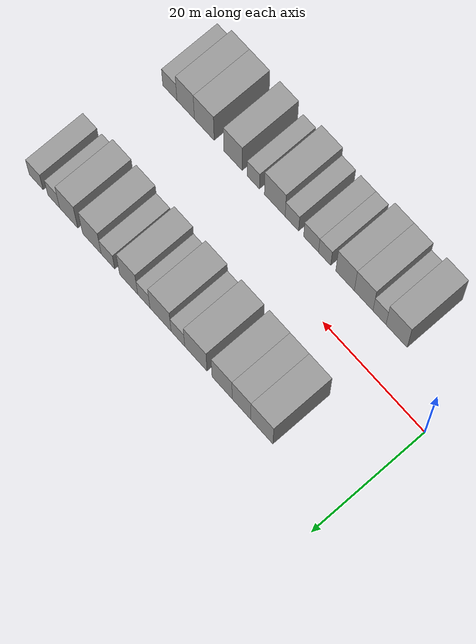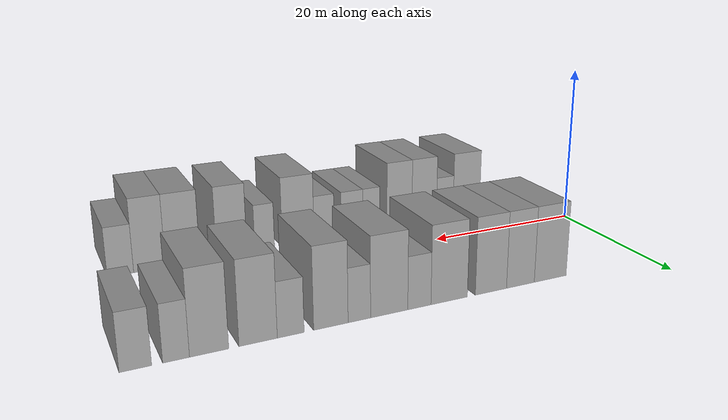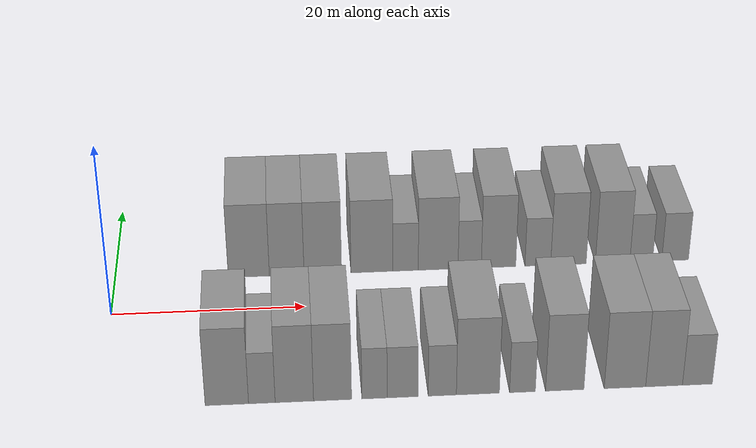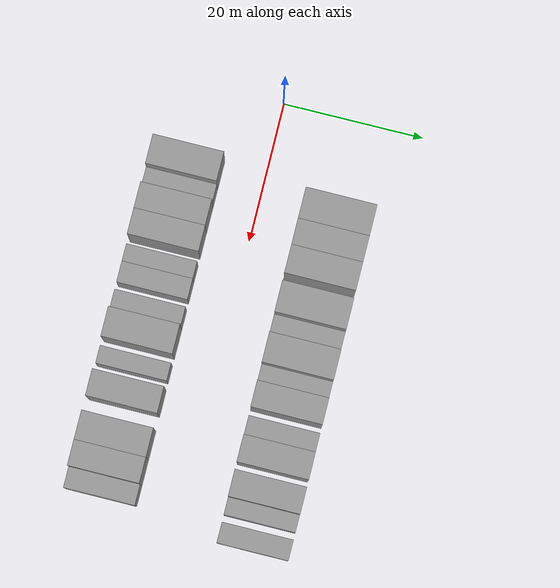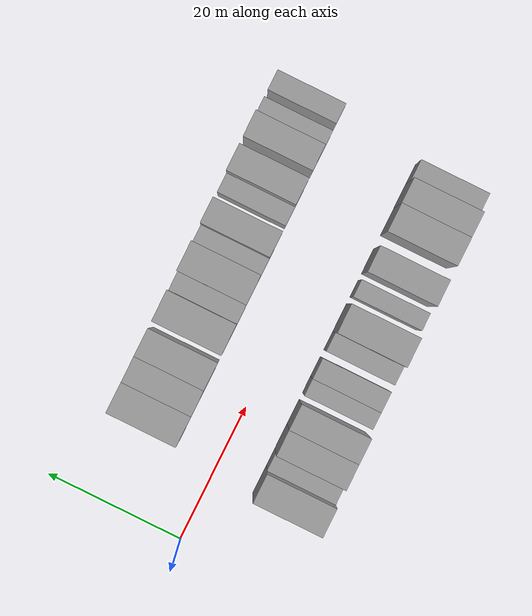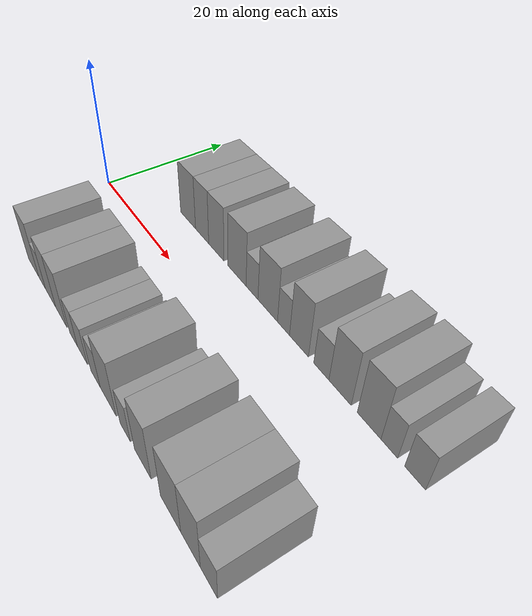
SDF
<sdf version="1.6">
 <world name="default">
  <model name="building_1">
   <static>1</static>
   <pose>14.1911 11.0000 0 0.000000 0.000000 1.570796</pose>
   <link name="link">
    <pose>0 0 4.50 0 0 0</pose>
    <collision name="collision"><geometry><box><size>10.0000 4.3821 9.0000</size></box></geometry></collision>
    <visual name="visual">
     <cast_shadows>0</cast_shadows>
     <geometry><box><size>10.0000 4.3821 9.0000</size></box></geometry>
     <material>
      <script>
       <uri>model://grey_wall/materials/scripts</uri>
       <uri>model://grey_wall/materials/textures</uri>
       <name>vrc/grey_wall</name>
      </script>
     </material>
    </visual>
   </link>
  </model>
  <model name="building_2">
   <static>1</static>
   <pose>18.2319 11.0000 0 0.000000 0.000000 1.570796</pose>
   <link name="link">
    <pose>0 0 4.50 0 0 0</pose>
    <collision name="collision"><geometry><box><size>10.0000 3.6997 9.0000</size></box></geometry></collision>
    <visual name="visual">
     <cast_shadows>0</cast_shadows>
     <geometry><box><size>10.0000 3.6997 9.0000</size></box></geometry>
     <material>
      <script>
       <uri>model://grey_wall/materials/scripts</uri>
       <uri>model://grey_wall/materials/textures</uri>
       <name>vrc/grey_wall</name>
      </script>
     </material>
    </visual>
   </link>
  </model>
  <model name="building_3">
   <static>1</static>
   <pose>22.0924 11.0000 0 0.000000 0.000000 1.570796</pose>
   <link name="link">
    <pose>0 0 4.50 0 0 0</pose>
    <collision name="collision"><geometry><box><size>10.0000 4.0213 9.0000</size></box></geometry></collision>
    <visual name="visual">
     <cast_shadows>0</cast_shadows>
     <geometry><box><size>10.0000 4.0213 9.0000</size></box></geometry>
     <material>
      <script>
       <uri>model://grey_wall/materials/scripts</uri>
       <uri>model://grey_wall/materials/textures</uri>
       <name>vrc/grey_wall</name>
      </script>
     </material>
    </visual>
   </link>
  </model>
  <model name="building_4">
   <static>1</static>
   <pose>27.3407 11.0000 0 0.000000 0.000000 1.570796</pose>
   <link name="link">
    <pose>0 0 4.50 0 0 0</pose>
    <collision name="collision"><geometry><box><size>10.0000 4.4752 9.0000</size></box></geometry></collision>
    <visual name="visual">
     <cast_shadows>0</cast_shadows>
     <geometry><box><size>10.0000 4.4752 9.0000</size></box></geometry>
     <material>
      <script>
       <uri>model://grey_wall/materials/scripts</uri>
       <uri>model://grey_wall/materials/textures</uri>
       <name>vrc/grey_wall</name>
      </script>
     </material>
    </visual>
   </link>
  </model>
  <model name="building_5">
   <static>1</static>
   <pose>30.9566 11.0000 0 0.000000 0.000000 1.570796</pose>
   <link name="link">
    <pose>0 0 3.00 0 0 0</pose>
    <collision name="collision"><geometry><box><size>10.0000 2.7566 6.0000</size></box></geometry></collision>
    <visual name="visual">
     <cast_shadows>0</cast_shadows>
     <geometry><box><size>10.0000 2.7566 6.0000</size></box></geometry>
     <material>
      <script>
       <uri>model://grey_wall/materials/scripts</uri>
       <uri>model://grey_wall/materials/textures</uri>
       <name>vrc/grey_wall</name>
      </script>
     </material>
    </visual>
   </link>
  </model>
  <model name="building_6">
   <static>1</static>
   <pose>34.4782 11.0000 0 0.000000 0.000000 1.570796</pose>
   <link name="link">
    <pose>0 0 4.50 0 0 0</pose>
    <collision name="collision"><geometry><box><size>10.0000 4.2865 9.0000</size></box></geometry></collision>
    <visual name="visual">
     <cast_shadows>0</cast_shadows>
     <geometry><box><size>10.0000 4.2865 9.0000</size></box></geometry>
     <material>
      <script>
       <uri>model://grey_wall/materials/scripts</uri>
       <uri>model://grey_wall/materials/textures</uri>
       <name>vrc/grey_wall</name>
      </script>
     </material>
    </visual>
   </link>
  </model>
  <model name="building_7">
   <static>1</static>
   <pose>37.8743 11.0000 0 0.000000 0.000000 1.570796</pose>
   <link name="link">
    <pose>0 0 3.00 0 0 0</pose>
    <collision name="collision"><geometry><box><size>10.0000 2.5058 6.0000</size></box></geometry></collision>
    <visual name="visual">
     <cast_shadows>0</cast_shadows>
     <geometry><box><size>10.0000 2.5058 6.0000</size></box></geometry>
     <material>
      <script>
       <uri>model://grey_wall/materials/scripts</uri>
       <uri>model://grey_wall/materials/textures</uri>
       <name>vrc/grey_wall</name>
      </script>
     </material>
    </visual>
   </link>
  </model>
  <model name="building_8">
   <static>1</static>
   <pose>40.9944 11.0000 0 0.000000 0.000000 1.570796</pose>
   <link name="link">
    <pose>0 0 4.50 0 0 0</pose>
    <collision name="collision"><geometry><box><size>10.0000 3.7344 9.0000</size></box></geometry></collision>
    <visual name="visual">
     <cast_shadows>0</cast_shadows>
     <geometry><box><size>10.0000 3.7344 9.0000</size></box></geometry>
     <material>
      <script>
       <uri>model://grey_wall/materials/scripts</uri>
       <uri>model://grey_wall/materials/textures</uri>
       <name>vrc/grey_wall</name>
      </script>
     </material>
    </visual>
   </link>
  </model>
  <model name="building_9">
   <static>1</static>
   <pose>45.2568 11.0000 0 0.000000 0.000000 1.570796</pose>
   <link name="link">
    <pose>0 0 3.00 0 0 0</pose>
    <collision name="collision"><geometry><box><size>10.0000 2.7903 6.0000</size></box></geometry></collision>
    <visual name="visual">
     <cast_shadows>0</cast_shadows>
     <geometry><box><size>10.0000 2.7903 6.0000</size></box></geometry>
     <material>
      <script>
       <uri>model://grey_wall/materials/scripts</uri>
       <uri>model://grey_wall/materials/textures</uri>
       <name>vrc/grey_wall</name>
      </script>
     </material>
    </visual>
   </link>
  </model>
  <model name="building_10">
   <static>1</static>
   <pose>48.5802 11.0000 0 0.000000 0.000000 1.570796</pose>
   <link name="link">
    <pose>0 0 4.50 0 0 0</pose>
    <collision name="collision"><geometry><box><size>10.0000 3.8563 9.0000</size></box></geometry></collision>
    <visual name="visual">
     <cast_shadows>0</cast_shadows>
     <geometry><box><size>10.0000 3.8563 9.0000</size></box></geometry>
     <material>
      <script>
       <uri>model://grey_wall/materials/scripts</uri>
       <uri>model://grey_wall/materials/textures</uri>
       <name>vrc/grey_wall</name>
      </script>
     </material>
    </visual>
   </link>
  </model>
  <model name="building_11">
   <static>1</static>
   <pose>53.3890 11.0000 0 0.000000 0.000000 1.570796</pose>
   <link name="link">
    <pose>0 0 4.50 0 0 0</pose>
    <collision name="collision"><geometry><box><size>10.0000 3.7614 9.0000</size></box></geometry></collision>
    <visual name="visual">
     <cast_shadows>0</cast_shadows>
     <geometry><box><size>10.0000 3.7614 9.0000</size></box></geometry>
     <material>
      <script>
       <uri>model://grey_wall/materials/scripts</uri>
       <uri>model://grey_wall/materials/textures</uri>
       <name>vrc/grey_wall</name>
      </script>
     </material>
    </visual>
   </link>
  </model>
  <model name="building_12">
   <static>1</static>
   <pose>56.5151 11.0000 0 0.000000 0.000000 1.570796</pose>
   <link name="link">
    <pose>0 0 3.00 0 0 0</pose>
    <collision name="collision"><geometry><box><size>10.0000 2.4908 6.0000</size></box></geometry></collision>
    <visual name="visual">
     <cast_shadows>0</cast_shadows>
     <geometry><box><size>10.0000 2.4908 6.0000</size></box></geometry>
     <material>
      <script>
       <uri>model://grey_wall/materials/scripts</uri>
       <uri>model://grey_wall/materials/textures</uri>
       <name>vrc/grey_wall</name>
      </script>
     </material>
    </visual>
   </link>
  </model>
  <model name="building_13">
   <static>1</static>
   <pose>60.2191 11.0000 0 0.000000 0.000000 1.570796</pose>
   <link name="link">
    <pose>0 0 3.00 0 0 0</pose>
    <collision name="collision"><geometry><box><size>10.0000 2.9172 6.0000</size></box></geometry></collision>
    <visual name="visual">
     <cast_shadows>0</cast_shadows>
     <geometry><box><size>10.0000 2.9172 6.0000</size></box></geometry>
     <material>
      <script>
       <uri>model://grey_wall/materials/scripts</uri>
       <uri>model://grey_wall/materials/textures</uri>
       <name>vrc/grey_wall</name>
      </script>
     </material>
    </visual>
   </link>
  </model>
  <model name="building_53">
   <static>1</static>
   <pose>12.0862 -11.0000 0 0.000000 0.000000 1.570796</pose>
   <link name="link">
    <pose>0 0 4.50 0 0 0</pose>
    <collision name="collision"><geometry><box><size>10.0000 4.1724 9.0000</size></box></geometry></collision>
    <visual name="visual">
     <cast_shadows>0</cast_shadows>
     <geometry><box><size>10.0000 4.1724 9.0000</size></box></geometry>
     <material>
      <script>
       <uri>model://grey_wall/materials/scripts</uri>
       <uri>model://grey_wall/materials/textures</uri>
       <name>vrc/grey_wall</name>
      </script>
     </material>
    </visual>
   </link>
  </model>
  <model name="building_54">
   <static>1</static>
   <pose>15.4557 -11.0000 0 0.000000 0.000000 1.570796</pose>
   <link name="link">
    <pose>0 0 3.00 0 0 0</pose>
    <collision name="collision"><geometry><box><size>10.0000 2.5665 6.0000</size></box></geometry></collision>
    <visual name="visual">
     <cast_shadows>0</cast_shadows>
     <geometry><box><size>10.0000 2.5665 6.0000</size></box></geometry>
     <material>
      <script>
       <uri>model://grey_wall/materials/scripts</uri>
       <uri>model://grey_wall/materials/textures</uri>
       <name>vrc/grey_wall</name>
      </script>
     </material>
    </visual>
   </link>
  </model>
  <model name="building_55">
   <static>1</static>
   <pose>18.5907 -11.0000 0 0.000000 0.000000 1.570796</pose>
   <link name="link">
    <pose>0 0 4.50 0 0 0</pose>
    <collision name="collision"><geometry><box><size>10.0000 3.7034 9.0000</size></box></geometry></collision>
    <visual name="visual">
     <cast_shadows>0</cast_shadows>
     <geometry><box><size>10.0000 3.7034 9.0000</size></box></geometry>
     <material>
      <script>
       <uri>model://grey_wall/materials/scripts</uri>
       <uri>model://grey_wall/materials/textures</uri>
       <name>vrc/grey_wall</name>
      </script>
     </material>
    </visual>
   </link>
  </model>
  <model name="building_56">
   <static>1</static>
   <pose>22.2863 -11.0000 0 0.000000 0.000000 1.570796</pose>
   <link name="link">
    <pose>0 0 4.50 0 0 0</pose>
    <collision name="collision"><geometry><box><size>10.0000 3.6878 9.0000</size></box></geometry></collision>
    <visual name="visual">
     <cast_shadows>0</cast_shadows>
     <geometry><box><size>10.0000 3.6878 9.0000</size></box></geometry>
     <material>
      <script>
       <uri>model://grey_wall/materials/scripts</uri>
       <uri>model://grey_wall/materials/textures</uri>
       <name>vrc/grey_wall</name>
      </script>
     </material>
    </visual>
   </link>
  </model>
  <model name="building_57">
   <static>1</static>
   <pose>26.3542 -11.0000 0 0.000000 0.000000 1.570796</pose>
   <link name="link">
    <pose>0 0 3.00 0 0 0</pose>
    <collision name="collision"><geometry><box><size>10.0000 2.4482 6.0000</size></box></geometry></collision>
    <visual name="visual">
     <cast_shadows>0</cast_shadows>
     <geometry><box><size>10.0000 2.4482 6.0000</size></box></geometry>
     <material>
      <script>
       <uri>model://grey_wall/materials/scripts</uri>
       <uri>model://grey_wall/materials/textures</uri>
       <name>vrc/grey_wall</name>
      </script>
     </material>
    </visual>
   </link>
  </model>
  <model name="building_58">
   <static>1</static>
   <pose>29.0768 -11.0000 0 0.000000 0.000000 1.570796</pose>
   <link name="link">
    <pose>0 0 3.00 0 0 0</pose>
    <collision name="collision"><geometry><box><size>10.0000 2.9970 6.0000</size></box></geometry></collision>
    <visual name="visual">
     <cast_shadows>0</cast_shadows>
     <geometry><box><size>10.0000 2.9970 6.0000</size></box></geometry>
     <material>
      <script>
       <uri>model://grey_wall/materials/scripts</uri>
       <uri>model://grey_wall/materials/textures</uri>
       <name>vrc/grey_wall</name>
      </script>
     </material>
    </visual>
   </link>
  </model>
  <model name="building_59">
   <static>1</static>
   <pose>32.9451 -11.0000 0 0.000000 0.000000 1.570796</pose>
   <link name="link">
    <pose>0 0 3.00 0 0 0</pose>
    <collision name="collision"><geometry><box><size>10.0000 2.7396 6.0000</size></box></geometry></collision>
    <visual name="visual">
     <cast_shadows>0</cast_shadows>
     <geometry><box><size>10.0000 2.7396 6.0000</size></box></geometry>
     <material>
      <script>
       <uri>model://grey_wall/materials/scripts</uri>
       <uri>model://grey_wall/materials/textures</uri>
       <name>vrc/grey_wall</name>
      </script>
     </material>
    </visual>
   </link>
  </model>
  <model name="building_60">
   <static>1</static>
   <pose>36.4174 -11.0000 0 0.000000 0.000000 1.570796</pose>
   <link name="link">
    <pose>0 0 4.50 0 0 0</pose>
    <collision name="collision"><geometry><box><size>10.0000 4.2051 9.0000</size></box></geometry></collision>
    <visual name="visual">
     <cast_shadows>0</cast_shadows>
     <geometry><box><size>10.0000 4.2051 9.0000</size></box></geometry>
     <material>
      <script>
       <uri>model://grey_wall/materials/scripts</uri>
       <uri>model://grey_wall/materials/textures</uri>
       <name>vrc/grey_wall</name>
      </script>
     </material>
    </visual>
   </link>
  </model>
  <model name="building_61">
   <static>1</static>
   <pose>40.7813 -11.0000 0 0.000000 0.000000 1.570796</pose>
   <link name="link">
    <pose>0 0 3.00 0 0 0</pose>
    <collision name="collision"><geometry><box><size>10.0000 2.5228 6.0000</size></box></geometry></collision>
    <visual name="visual">
     <cast_shadows>0</cast_shadows>
     <geometry><box><size>10.0000 2.5228 6.0000</size></box></geometry>
     <material>
      <script>
       <uri>model://grey_wall/materials/scripts</uri>
       <uri>model://grey_wall/materials/textures</uri>
       <name>vrc/grey_wall</name>
      </script>
     </material>
    </visual>
   </link>
  </model>
  <model name="building_62">
   <static>1</static>
   <pose>44.9284 -11.0000 0 0.000000 0.000000 1.570796</pose>
   <link name="link">
    <pose>0 0 4.50 0 0 0</pose>
    <collision name="collision"><geometry><box><size>10.0000 3.7713 9.0000</size></box></geometry></collision>
    <visual name="visual">
     <cast_shadows>0</cast_shadows>
     <geometry><box><size>10.0000 3.7713 9.0000</size></box></geometry>
     <material>
      <script>
       <uri>model://grey_wall/materials/scripts</uri>
       <uri>model://grey_wall/materials/textures</uri>
       <name>vrc/grey_wall</name>
      </script>
     </material>
    </visual>
   </link>
  </model>
  <model name="building_63">
   <static>1</static>
   <pose>50.8585 -11.0000 0 0.000000 0.000000 1.570796</pose>
   <link name="link">
    <pose>0 0 4.50 0 0 0</pose>
    <collision name="collision"><geometry><box><size>10.0000 4.0890 9.0000</size></box></geometry></collision>
    <visual name="visual">
     <cast_shadows>0</cast_shadows>
     <geometry><box><size>10.0000 4.0890 9.0000</size></box></geometry>
     <material>
      <script>
       <uri>model://grey_wall/materials/scripts</uri>
       <uri>model://grey_wall/materials/textures</uri>
       <name>vrc/grey_wall</name>
      </script>
     </material>
    </visual>
   </link>
  </model>
  <model name="building_64">
   <static>1</static>
   <pose>54.7216 -11.0000 0 0.000000 0.000000 1.570796</pose>
   <link name="link">
    <pose>0 0 4.50 0 0 0</pose>
    <collision name="collision"><geometry><box><size>10.0000 3.6373 9.0000</size></box></geometry></collision>
    <visual name="visual">
     <cast_shadows>0</cast_shadows>
     <geometry><box><size>10.0000 3.6373 9.0000</size></box></geometry>
     <material>
      <script>
       <uri>model://grey_wall/materials/scripts</uri>
       <uri>model://grey_wall/materials/textures</uri>
       <name>vrc/grey_wall</name>
      </script>
     </material>
    </visual>
   </link>
  </model>
  <model name="building_65">
   <static>1</static>
   <pose>58.0206 -11.0000 0 0.000000 0.000000 1.570796</pose>
   <link name="link">
    <pose>0 0 3.00 0 0 0</pose>
    <collision name="collision"><geometry><box><size>10.0000 2.9605 6.0000</size></box></geometry></collision>
    <visual name="visual">
     <cast_shadows>0</cast_shadows>
     <geometry><box><size>10.0000 2.9605 6.0000</size></box></geometry>
     <material>
      <script>
       <uri>model://grey_wall/materials/scripts</uri>
       <uri>model://grey_wall/materials/textures</uri>
       <name>vrc/grey_wall</name>
      </script>
     </material>
    </visual>
   </link>
  </model>
 </world>
</sdf>
